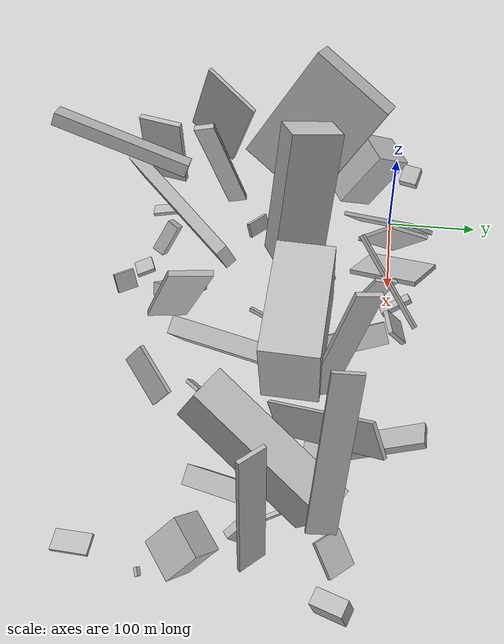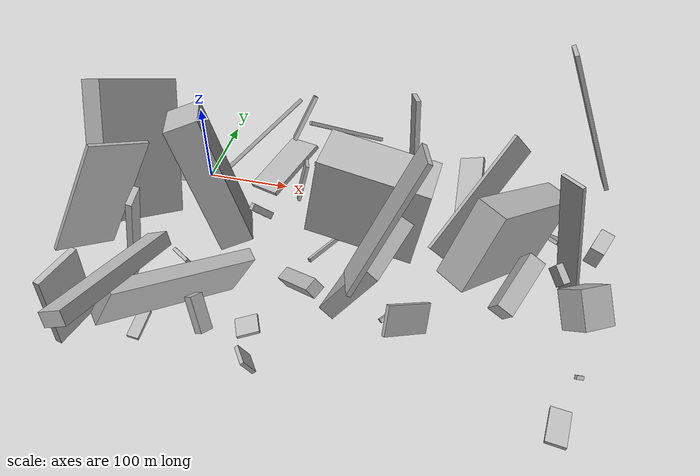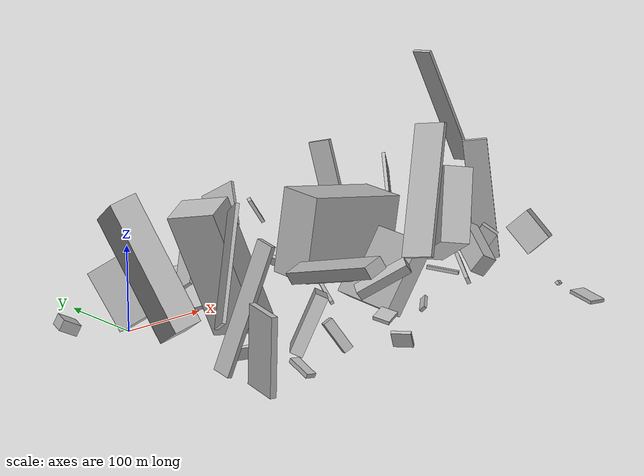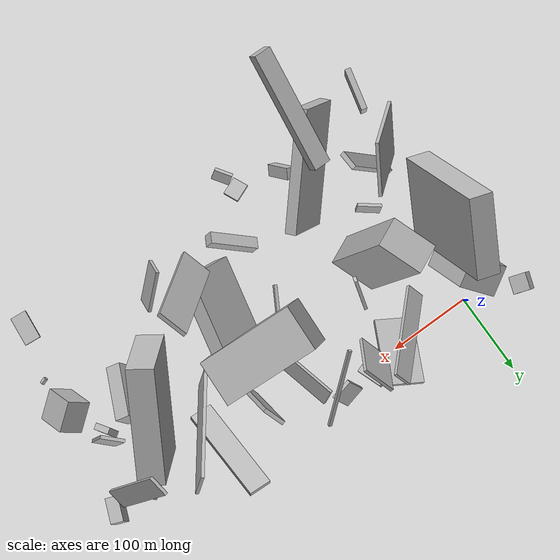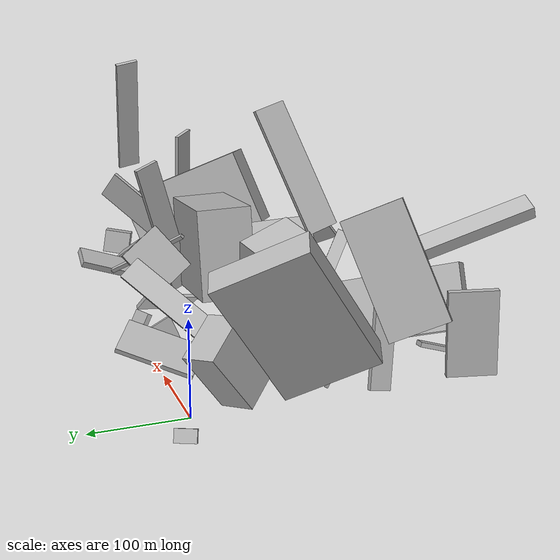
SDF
<sdf version="1.6">
 <world name="default">
  <model name="building_1">
   <static>0</static>
   <pose>428.7278207946596 -42.18034510931085 16.957182287933723 0.2696268442568458 -0.6270759837252157 -2.5399342450366302</pose>
   <link name="link">
    <gravity>0</gravity>
    <pose>0 0 2.0 0 0 0</pose>
    <collision name="collision"><geometry><box><size>35 29 4</size></box></geometry></collision>
    <visual name="visual">
     <cast_shadows>0</cast_shadows>
     <geometry><box><size>35 29 4</size></box></geometry>
     <material>
      <script>
       <uri>model://HANNAS_wall/materials/scripts</uri>
       <uri>model://HANNAS_wall/materials/textures</uri>
       <name>vrc/HANNAS_wall</name>
      </script>
     </material>
    </visual>
   </link>
  </model>
  <model name="building_2">
   <static>0</static>
   <pose>-28.17454216547587 -94.84533791944695 109.63824158741866 1.9519408101106384 -0.4505372925723455 -2.0603386438884987</pose>
   <link name="link">
    <gravity>0</gravity>
    <pose>0 0 15.0 0 0 0</pose>
    <collision name="collision"><geometry><box><size>101 150 30</size></box></geometry></collision>
    <visual name="visual">
     <cast_shadows>0</cast_shadows>
     <geometry><box><size>101 150 30</size></box></geometry>
     <material>
      <script>
       <uri>model://HANNAS_wall/materials/scripts</uri>
       <uri>model://HANNAS_wall/materials/textures</uri>
       <name>vrc/HANNAS_wall</name>
      </script>
     </material>
    </visual>
   </link>
  </model>
  <model name="building_3">
   <static>0</static>
   <pose>356.6416913808307 -103.4254415363435 86.08854179847128 1.8408781530230274 -1.111384099670945 0.7236825017648608</pose>
   <link name="link">
    <gravity>0</gravity>
    <pose>0 0 16.5 0 0 0</pose>
    <collision name="collision"><geometry><box><size>87 150 33</size></box></geometry></collision>
    <visual name="visual">
     <cast_shadows>0</cast_shadows>
     <geometry><box><size>87 150 33</size></box></geometry>
     <material>
      <script>
       <uri>model://HANNAS_wall/materials/scripts</uri>
       <uri>model://HANNAS_wall/materials/textures</uri>
       <name>vrc/HANNAS_wall</name>
      </script>
     </material>
    </visual>
   </link>
  </model>
  <model name="building_7">
   <static>0</static>
   <pose>443.29078052178306 -162.41020155717433 48.78575082048646 0.8316328073190492 0.2480510757554841 0.6548419063276454</pose>
   <link name="link">
    <gravity>0</gravity>
    <pose>0 0 15.5 0 0 0</pose>
    <collision name="collision"><geometry><box><size>38 40 31</size></box></geometry></collision>
    <visual name="visual">
     <cast_shadows>0</cast_shadows>
     <geometry><box><size>38 40 31</size></box></geometry>
     <material>
      <script>
       <uri>model://HANNAS_wall/materials/scripts</uri>
       <uri>model://HANNAS_wall/materials/textures</uri>
       <name>vrc/HANNAS_wall</name>
      </script>
     </material>
    </visual>
   </link>
  </model>
  <model name="building_10">
   <static>0</static>
   <pose>228.71980783097445 -219.0600795961326 89.68858729290486 -0.21594638919581066 0.465933889172764 0.1764617138610535</pose>
   <link name="link">
    <gravity>0</gravity>
    <pose>0 0 75.0 0 0 0</pose>
    <collision name="collision"><geometry><box><size>5 38 150</size></box></geometry></collision>
    <visual name="visual">
     <cast_shadows>0</cast_shadows>
     <geometry><box><size>5 38 150</size></box></geometry>
     <material>
      <script>
       <uri>model://HANNAS_wall/materials/scripts</uri>
       <uri>model://HANNAS_wall/materials/textures</uri>
       <name>vrc/HANNAS_wall</name>
      </script>
     </material>
    </visual>
   </link>
  </model>
  <model name="building_13">
   <static>0</static>
   <pose>336.2608177523333 -57.26380573803487 77.9672676747095 1.3693642088923739 -0.6420917357678897 0.9331751176483453</pose>
   <link name="link">
    <gravity>0</gravity>
    <pose>0 0 2.0 0 0 0</pose>
    <collision name="collision"><geometry><box><size>150 35 4</size></box></geometry></collision>
    <visual name="visual">
     <cast_shadows>0</cast_shadows>
     <geometry><box><size>150 35 4</size></box></geometry>
     <material>
      <script>
       <uri>model://HANNAS_wall/materials/scripts</uri>
       <uri>model://HANNAS_wall/materials/textures</uri>
       <name>vrc/HANNAS_wall</name>
      </script>
     </material>
    </visual>
   </link>
  </model>
  <model name="building_16">
   <static>0</static>
   <pose>193.89481058045058 -105.43311970905435 31.41895714829406 -0.4205426350928042 -0.03033148948708915 1.048182692523181</pose>
   <link name="link">
    <gravity>0</gravity>
    <pose>0 0 2.0 0 0 0</pose>
    <collision name="collision"><geometry><box><size>93 4 4</size></box></geometry></collision>
    <visual name="visual">
     <cast_shadows>0</cast_shadows>
     <geometry><box><size>93 4 4</size></box></geometry>
     <material>
      <script>
       <uri>model://HANNAS_wall/materials/scripts</uri>
       <uri>model://HANNAS_wall/materials/textures</uri>
       <name>vrc/HANNAS_wall</name>
      </script>
     </material>
    </visual>
   </link>
  </model>
  <model name="building_18">
   <static>0</static>
   <pose>32.88048200828119 -107.98514863970502 84.6322911813534 0.669048243016013 -1.2128516110476115 2.8612218517507046</pose>
   <link name="link">
    <gravity>0</gravity>
    <pose>0 0 18.5 0 0 0</pose>
    <collision name="collision"><geometry><box><size>150 58 37</size></box></geometry></collision>
    <visual name="visual">
     <cast_shadows>0</cast_shadows>
     <geometry><box><size>150 58 37</size></box></geometry>
     <material>
      <script>
       <uri>model://HANNAS_wall/materials/scripts</uri>
       <uri>model://HANNAS_wall/materials/textures</uri>
       <name>vrc/HANNAS_wall</name>
      </script>
     </material>
    </visual>
   </link>
  </model>
  <model name="building_21">
   <static>0</static>
   <pose>312.31016568434177 -19.070956634057474 30.517171959442205 1.2552241656883703 -0.36375143930811493 1.625078557167272</pose>
   <link name="link">
    <gravity>0</gravity>
    <pose>0 0 14.0 0 0 0</pose>
    <collision name="collision"><geometry><box><size>120 7 28</size></box></geometry></collision>
    <visual name="visual">
     <cast_shadows>0</cast_shadows>
     <geometry><box><size>120 7 28</size></box></geometry>
     <material>
      <script>
       <uri>model://HANNAS_wall/materials/scripts</uri>
       <uri>model://HANNAS_wall/materials/textures</uri>
       <name>vrc/HANNAS_wall</name>
      </script>
     </material>
    </visual>
   </link>
  </model>
  <model name="building_23">
   <static>0</static>
   <pose>382.7426065292191 -140.7126565185507 36.86874132402577 0.5172526830908211 -0.3474380195366629 1.1447578669161191</pose>
   <link name="link">
    <gravity>0</gravity>
    <pose>0 0 12.5 0 0 0</pose>
    <collision name="collision"><geometry><box><size>66 19 25</size></box></geometry></collision>
    <visual name="visual">
     <cast_shadows>0</cast_shadows>
     <geometry><box><size>66 19 25</size></box></geometry>
     <material>
      <script>
       <uri>model://HANNAS_wall/materials/scripts</uri>
       <uri>model://HANNAS_wall/materials/textures</uri>
       <name>vrc/HANNAS_wall</name>
      </script>
     </material>
    </visual>
   </link>
  </model>
  <model name="building_25">
   <static>0</static>
   <pose>4.389593965171748 -196.6463219581927 78.0228220871806 0.6567361422352153 -1.2488125313625755 -0.5873960676156447</pose>
   <link name="link">
    <gravity>0</gravity>
    <pose>0 0 3.0 0 0 0</pose>
    <collision name="collision"><geometry><box><size>150 22 6</size></box></geometry></collision>
    <visual name="visual">
     <cast_shadows>0</cast_shadows>
     <geometry><box><size>150 22 6</size></box></geometry>
     <material>
      <script>
       <uri>model://HANNAS_wall/materials/scripts</uri>
       <uri>model://HANNAS_wall/materials/textures</uri>
       <name>vrc/HANNAS_wall</name>
      </script>
     </material>
    </visual>
   </link>
  </model>
  <model name="building_28">
   <static>0</static>
   <pose>25.171193193501406 -260.3033794873742 22.70617858074064 -0.30392544793453796 -0.15597460392270407 3.105824835132039</pose>
   <link name="link">
    <gravity>0</gravity>
    <pose>0 0 2.5 0 0 0</pose>
    <collision name="collision"><geometry><box><size>12 31 5</size></box></geometry></collision>
    <visual name="visual">
     <cast_shadows>0</cast_shadows>
     <geometry><box><size>12 31 5</size></box></geometry>
     <material>
      <script>
       <uri>model://HANNAS_wall/materials/scripts</uri>
       <uri>model://HANNAS_wall/materials/textures</uri>
       <name>vrc/HANNAS_wall</name>
      </script>
     </material>
    </visual>
   </link>
  </model>
  <model name="building_29">
   <static>0</static>
   <pose>166.59759432747757 -88.10911189030281 96.64680551353538 1.7373745606689475 0.008003665109042659 1.5205692075635895</pose>
   <link name="link">
    <gravity>0</gravity>
    <pose>0 0 60.0 0 0 0</pose>
    <collision name="collision"><geometry><box><size>58 97 120</size></box></geometry></collision>
    <visual name="visual">
     <cast_shadows>0</cast_shadows>
     <geometry><box><size>58 97 120</size></box></geometry>
     <material>
      <script>
       <uri>model://HANNAS_wall/materials/scripts</uri>
       <uri>model://HANNAS_wall/materials/textures</uri>
       <name>vrc/HANNAS_wall</name>
      </script>
     </material>
    </visual>
   </link>
  </model>
  <model name="building_30">
   <static>0</static>
   <pose>457.94054671979103 -53.84595376861509 118.95663722659444 0.13923218618742 0.3762697699440008 -2.9762716071977593</pose>
   <link name="link">
    <gravity>0</gravity>
    <pose>0 0 75.0 0 0 0</pose>
    <collision name="collision"><geometry><box><size>4 25 150</size></box></geometry></collision>
    <visual name="visual">
     <cast_shadows>0</cast_shadows>
     <geometry><box><size>4 25 150</size></box></geometry>
     <material>
      <script>
       <uri>model://HANNAS_wall/materials/scripts</uri>
       <uri>model://HANNAS_wall/materials/textures</uri>
       <name>vrc/HANNAS_wall</name>
      </script>
     </material>
    </visual>
   </link>
  </model>
  <model name="building_39">
   <static>0</static>
   <pose>62.60809345430033 -238.50681258945428 57.45522619852334 1.1505146672770694 -0.29645369070519156 -2.286266401794108</pose>
   <link name="link">
    <gravity>0</gravity>
    <pose>0 0 7.0 0 0 0</pose>
    <collision name="collision"><geometry><box><size>150 66 14</size></box></geometry></collision>
    <visual name="visual">
     <cast_shadows>0</cast_shadows>
     <geometry><box><size>150 66 14</size></box></geometry>
     <material>
      <script>
       <uri>model://HANNAS_wall/materials/scripts</uri>
       <uri>model://HANNAS_wall/materials/textures</uri>
       <name>vrc/HANNAS_wall</name>
      </script>
     </material>
    </visual>
   </link>
  </model>
  <model name="building_40">
   <static>0</static>
   <pose>42.458412938245424 -44.21529362586462 52.10254592129152 -0.8764587203590163 -0.6336072392792207 -1.2573864721766719</pose>
   <link name="link">
    <gravity>0</gravity>
    <pose>0 0 60.0 0 0 0</pose>
    <collision name="collision"><geometry><box><size>25 4 120</size></box></geometry></collision>
    <visual name="visual">
     <cast_shadows>0</cast_shadows>
     <geometry><box><size>25 4 120</size></box></geometry>
     <material>
      <script>
       <uri>model://HANNAS_wall/materials/scripts</uri>
       <uri>model://HANNAS_wall/materials/textures</uri>
       <name>vrc/HANNAS_wall</name>
      </script>
     </material>
    </visual>
   </link>
  </model>
  <model name="building_43">
   <static>0</static>
   <pose>-45.29101240393278 -213.45261910531525 74.7563470510527 0.44955479510648966 -0.16801294524254867 2.5157912584367494</pose>
   <link name="link">
    <gravity>0</gravity>
    <pose>0 0 62.5 0 0 0</pose>
    <collision name="collision"><geometry><box><size>4 65 125</size></box></geometry></collision>
    <visual name="visual">
     <cast_shadows>0</cast_shadows>
     <geometry><box><size>4 65 125</size></box></geometry>
     <material>
      <script>
       <uri>model://HANNAS_wall/materials/scripts</uri>
       <uri>model://HANNAS_wall/materials/textures</uri>
       <name>vrc/HANNAS_wall</name>
      </script>
     </material>
    </visual>
   </link>
  </model>
  <model name="building_44">
   <static>0</static>
   <pose>93.79763727356249 -81.6163046011543 25.32142411683902 0.8899945130065595 -0.027524245287982935 2.8680903217279052</pose>
   <link name="link">
    <gravity>0</gravity>
    <pose>0 0 4.0 0 0 0</pose>
    <collision name="collision"><geometry><box><size>4 56 8</size></box></geometry></collision>
    <visual name="visual">
     <cast_shadows>0</cast_shadows>
     <geometry><box><size>4 56 8</size></box></geometry>
     <material>
      <script>
       <uri>model://HANNAS_wall/materials/scripts</uri>
       <uri>model://HANNAS_wall/materials/textures</uri>
       <name>vrc/HANNAS_wall</name>
      </script>
     </material>
    </visual>
   </link>
  </model>
  <model name="building_45">
   <static>0</static>
   <pose>-36.60759055950637 -15.645972913454838 48.77078250600714 0.9750750165499324 0.18829878276945694 0.5524284972268402</pose>
   <link name="link">
    <gravity>0</gravity>
    <pose>0 0 25.5 0 0 0</pose>
    <collision name="collision"><geometry><box><size>38 72 51</size></box></geometry></collision>
    <visual name="visual">
     <cast_shadows>0</cast_shadows>
     <geometry><box><size>38 72 51</size></box></geometry>
     <material>
      <script>
       <uri>model://HANNAS_wall/materials/scripts</uri>
       <uri>model://HANNAS_wall/materials/textures</uri>
       <name>vrc/HANNAS_wall</name>
      </script>
     </material>
    </visual>
   </link>
  </model>
  <model name="building_46">
   <static>0</static>
   <pose>439.36246692231015 -259.06855711220277 13.110036924226572 2.4662749637548003 -1.4580544607966326 -0.9946570482629284</pose>
   <link name="link">
    <gravity>0</gravity>
    <pose>0 0 18.0 0 0 0</pose>
    <collision name="collision"><geometry><box><size>4 20 36</size></box></geometry></collision>
    <visual name="visual">
     <cast_shadows>0</cast_shadows>
     <geometry><box><size>4 20 36</size></box></geometry>
     <material>
      <script>
       <uri>model://HANNAS_wall/materials/scripts</uri>
       <uri>model://HANNAS_wall/materials/textures</uri>
       <name>vrc/HANNAS_wall</name>
      </script>
     </material>
    </visual>
   </link>
  </model>
  <model name="building_47">
   <static>0</static>
   <pose>263.7995213693678 -190.17505972717737 21.81516428093468 -2.3060808246763393 0.29613930957777457 -2.3826833346823335</pose>
   <link name="link">
    <gravity>0</gravity>
    <pose>0 0 2.0 0 0 0</pose>
    <collision name="collision"><geometry><box><size>21 8 4</size></box></geometry></collision>
    <visual name="visual">
     <cast_shadows>0</cast_shadows>
     <geometry><box><size>21 8 4</size></box></geometry>
     <material>
      <script>
       <uri>model://HANNAS_wall/materials/scripts</uri>
       <uri>model://HANNAS_wall/materials/textures</uri>
       <name>vrc/HANNAS_wall</name>
      </script>
     </material>
    </visual>
   </link>
  </model>
  <model name="building_48">
   <static>0</static>
   <pose>245.5349558907964 -158.25828220529715 53.42366633585462 1.0129079876725369 -0.08658230980326903 -1.786729906764657</pose>
   <link name="link">
    <gravity>0</gravity>
    <pose>0 0 9.0 0 0 0</pose>
    <collision name="collision"><geometry><box><size>110 85 18</size></box></geometry></collision>
    <visual name="visual">
     <cast_shadows>0</cast_shadows>
     <geometry><box><size>110 85 18</size></box></geometry>
     <material>
      <script>
       <uri>model://HANNAS_wall/materials/scripts</uri>
       <uri>model://HANNAS_wall/materials/textures</uri>
       <name>vrc/HANNAS_wall</name>
      </script>
     </material>
    </visual>
   </link>
  </model>
  <model name="building_51">
   <static>0</static>
   <pose>140.41809066426353 9.634206397802721 16.767006799696865 -0.4362126192983932 0.05062594441194148 -2.811261060848711</pose>
   <link name="link">
    <gravity>0</gravity>
    <pose>0 0 3.5 0 0 0</pose>
    <collision name="collision"><geometry><box><size>9 34 7</size></box></geometry></collision>
    <visual name="visual">
     <cast_shadows>0</cast_shadows>
     <geometry><box><size>9 34 7</size></box></geometry>
     <material>
      <script>
       <uri>model://HANNAS_wall/materials/scripts</uri>
       <uri>model://HANNAS_wall/materials/textures</uri>
       <name>vrc/HANNAS_wall</name>
      </script>
     </material>
    </visual>
   </link>
  </model>
  <model name="building_52">
   <static>0</static>
   <pose>456.19945445854177 -212.69543005472303 4.9589546232820165 0.42845480037777595 -0.6883425021912473 1.581012202550455</pose>
   <link name="link">
    <gravity>0</gravity>
    <pose>0 0 2.0 0 0 0</pose>
    <collision name="collision"><geometry><box><size>4 8 4</size></box></geometry></collision>
    <visual name="visual">
     <cast_shadows>0</cast_shadows>
     <geometry><box><size>4 8 4</size></box></geometry>
     <material>
      <script>
       <uri>model://HANNAS_wall/materials/scripts</uri>
       <uri>model://HANNAS_wall/materials/textures</uri>
       <name>vrc/HANNAS_wall</name>
      </script>
     </material>
    </visual>
   </link>
  </model>
  <model name="building_54">
   <static>0</static>
   <pose>149.82770195874303 -282.2264419177699 24.523168768038712 -0.06628542757418707 -0.49677980457982607 0.625199077303753</pose>
   <link name="link">
    <gravity>0</gravity>
    <pose>0 0 10.5 0 0 0</pose>
    <collision name="collision"><geometry><box><size>4 22 21</size></box></geometry></collision>
    <visual name="visual">
     <cast_shadows>0</cast_shadows>
     <geometry><box><size>4 22 21</size></box></geometry>
     <material>
      <script>
       <uri>model://HANNAS_wall/materials/scripts</uri>
       <uri>model://HANNAS_wall/materials/textures</uri>
       <name>vrc/HANNAS_wall</name>
      </script>
     </material>
    </visual>
   </link>
  </model>
  <model name="building_55">
   <static>0</static>
   <pose>92.77255858776658 -256.909061935312 27.37927024671644 -0.3145146976905711 -0.5641164056855686 -0.3573004512198289</pose>
   <link name="link">
    <gravity>0</gravity>
    <pose>0 0 19.0 0 0 0</pose>
    <collision name="collision"><geometry><box><size>11 14 38</size></box></geometry></collision>
    <visual name="visual">
     <cast_shadows>0</cast_shadows>
     <geometry><box><size>11 14 38</size></box></geometry>
     <material>
      <script>
       <uri>model://HANNAS_wall/materials/scripts</uri>
       <uri>model://HANNAS_wall/materials/textures</uri>
       <name>vrc/HANNAS_wall</name>
      </script>
     </material>
    </visual>
   </link>
  </model>
  <model name="building_56">
   <static>0</static>
   <pose>188.19525687219092 10.59624731970571 23.26765266393888 1.4148939091047186 0.559203219790466 -1.415305878373989</pose>
   <link name="link">
    <gravity>0</gravity>
    <pose>0 0 13.5 0 0 0</pose>
    <collision name="collision"><geometry><box><size>5 33 27</size></box></geometry></collision>
    <visual name="visual">
     <cast_shadows>0</cast_shadows>
     <geometry><box><size>5 33 27</size></box></geometry>
     <material>
      <script>
       <uri>model://HANNAS_wall/materials/scripts</uri>
       <uri>model://HANNAS_wall/materials/textures</uri>
       <name>vrc/HANNAS_wall</name>
      </script>
     </material>
    </visual>
   </link>
  </model>
  <model name="building_64">
   <static>0</static>
   <pose>305.3929777025232 -213.68937100538724 54.94362174514431 -0.7030645321901017 -0.9566538743959774 1.5264103343599316</pose>
   <link name="link">
    <gravity>0</gravity>
    <pose>0 0 26.0 0 0 0</pose>
    <collision name="collision"><geometry><box><size>30 4 52</size></box></geometry></collision>
    <visual name="visual">
     <cast_shadows>0</cast_shadows>
     <geometry><box><size>30 4 52</size></box></geometry>
     <material>
      <script>
       <uri>model://HANNAS_wall/materials/scripts</uri>
       <uri>model://HANNAS_wall/materials/textures</uri>
       <name>vrc/HANNAS_wall</name>
      </script>
     </material>
    </visual>
   </link>
  </model>
  <model name="building_65">
   <static>0</static>
   <pose>120.99163675403472 -19.09878010471369 93.50945918211875 0.6206539190209832 -0.43606268779534824 -3.1261576015923924</pose>
   <link name="link">
    <gravity>0</gravity>
    <pose>0 0 26.5 0 0 0</pose>
    <collision name="collision"><geometry><box><size>4 46 53</size></box></geometry></collision>
    <visual name="visual">
     <cast_shadows>0</cast_shadows>
     <geometry><box><size>4 46 53</size></box></geometry>
     <material>
      <script>
       <uri>model://HANNAS_wall/materials/scripts</uri>
       <uri>model://HANNAS_wall/materials/textures</uri>
       <name>vrc/HANNAS_wall</name>
      </script>
     </material>
    </visual>
   </link>
  </model>
  <model name="building_66">
   <static>0</static>
   <pose>38.606285495298216 -162.7121621429749 12.41726898453112 -1.91974246506526 1.1384180895213016 0.5893877760352274</pose>
   <link name="link">
    <gravity>0</gravity>
    <pose>0 0 14.5 0 0 0</pose>
    <collision name="collision"><geometry><box><size>17 4 29</size></box></geometry></collision>
    <visual name="visual">
     <cast_shadows>0</cast_shadows>
     <geometry><box><size>17 4 29</size></box></geometry>
     <material>
      <script>
       <uri>model://HANNAS_wall/materials/scripts</uri>
       <uri>model://HANNAS_wall/materials/textures</uri>
       <name>vrc/HANNAS_wall</name>
      </script>
     </material>
    </visual>
   </link>
  </model>
  <model name="building_68">
   <static>0</static>
   <pose>202.88718263203256 -32.80971661368076 35.779496507999994 0.8342022044286683 -0.1917329201224511 1.8118106915737138</pose>
   <link name="link">
    <gravity>0</gravity>
    <pose>0 0 2.0 0 0 0</pose>
    <collision name="collision"><geometry><box><size>64 23 4</size></box></geometry></collision>
    <visual name="visual">
     <cast_shadows>0</cast_shadows>
     <geometry><box><size>64 23 4</size></box></geometry>
     <material>
      <script>
       <uri>model://HANNAS_wall/materials/scripts</uri>
       <uri>model://HANNAS_wall/materials/textures</uri>
       <name>vrc/HANNAS_wall</name>
      </script>
     </material>
    </visual>
   </link>
  </model>
  <model name="building_69">
   <static>0</static>
   <pose>429.03393318344104 -114.06699200355952 88.69084877777664 1.4645781935610576 0.11491312557492608 2.34365310736227</pose>
   <link name="link">
    <gravity>0</gravity>
    <pose>0 0 2.0 0 0 0</pose>
    <collision name="collision"><geometry><box><size>28 150 4</size></box></geometry></collision>
    <visual name="visual">
     <cast_shadows>0</cast_shadows>
     <geometry><box><size>28 150 4</size></box></geometry>
     <material>
      <script>
       <uri>model://HANNAS_wall/materials/scripts</uri>
       <uri>model://HANNAS_wall/materials/textures</uri>
       <name>vrc/HANNAS_wall</name>
      </script>
     </material>
    </visual>
   </link>
  </model>
  <model name="building_70">
   <static>0</static>
   <pose>468.6286484511866 -37.233243298411786 16.987373642923586 1.7438752786369887 -0.14150032294468648 1.1813993020270848</pose>
   <link name="link">
    <gravity>0</gravity>
    <pose>0 0 8.0 0 0 0</pose>
    <collision name="collision"><geometry><box><size>31 27 16</size></box></geometry></collision>
    <visual name="visual">
     <cast_shadows>0</cast_shadows>
     <geometry><box><size>31 27 16</size></box></geometry>
     <material>
      <script>
       <uri>model://HANNAS_wall/materials/scripts</uri>
       <uri>model://HANNAS_wall/materials/textures</uri>
       <name>vrc/HANNAS_wall</name>
      </script>
     </material>
    </visual>
   </link>
  </model>
  <model name="building_71">
   <static>0</static>
   <pose>426.11145612182384 -118.9958792404859 40.92647160478757 -0.5742934114926567 0.084442996754387 -2.5654319784057793</pose>
   <link name="link">
    <gravity>0</gravity>
    <pose>0 0 9.5 0 0 0</pose>
    <collision name="collision"><geometry><box><size>8 21 19</size></box></geometry></collision>
    <visual name="visual">
     <cast_shadows>0</cast_shadows>
     <geometry><box><size>8 21 19</size></box></geometry>
     <material>
      <script>
       <uri>model://HANNAS_wall/materials/scripts</uri>
       <uri>model://HANNAS_wall/materials/textures</uri>
       <name>vrc/HANNAS_wall</name>
      </script>
     </material>
    </visual>
   </link>
  </model>
  <model name="building_73">
   <static>0</static>
   <pose>264.7373766162509 -45.287305362496326 101.88013586808768 1.550263219546519 -0.2752465230010884 -1.2473084306402185</pose>
   <link name="link">
    <gravity>0</gravity>
    <pose>0 0 2.5 0 0 0</pose>
    <collision name="collision"><geometry><box><size>27 150 5</size></box></geometry></collision>
    <visual name="visual">
     <cast_shadows>0</cast_shadows>
     <geometry><box><size>27 150 5</size></box></geometry>
     <material>
      <script>
       <uri>model://HANNAS_wall/materials/scripts</uri>
       <uri>model://HANNAS_wall/materials/textures</uri>
       <name>vrc/HANNAS_wall</name>
      </script>
     </material>
    </visual>
   </link>
  </model>
  <model name="building_74">
   <static>0</static>
   <pose>-31.948116657658804 -247.6508054258749 62.668831496888636 1.443172197844161 -1.5428682398338054 -0.1045644664650686</pose>
   <link name="link">
    <gravity>0</gravity>
    <pose>0 0 25.0 0 0 0</pose>
    <collision name="collision"><geometry><box><size>87 7 50</size></box></geometry></collision>
    <visual name="visual">
     <cast_shadows>0</cast_shadows>
     <geometry><box><size>87 7 50</size></box></geometry>
     <material>
      <script>
       <uri>model://HANNAS_wall/materials/scripts</uri>
       <uri>model://HANNAS_wall/materials/textures</uri>
       <name>vrc/HANNAS_wall</name>
      </script>
     </material>
    </visual>
   </link>
  </model>
  <model name="building_75">
   <static>0</static>
   <pose>127.17811148076538 -11.548386995734994 25.250086195604638 -0.8449922066093722 -1.15849686059064 1.1194072795831327</pose>
   <link name="link">
    <gravity>0</gravity>
    <pose>0 0 2.0 0 0 0</pose>
    <collision name="collision"><geometry><box><size>45 26 4</size></box></geometry></collision>
    <visual name="visual">
     <cast_shadows>0</cast_shadows>
     <geometry><box><size>45 26 4</size></box></geometry>
     <material>
      <script>
       <uri>model://HANNAS_wall/materials/scripts</uri>
       <uri>model://HANNAS_wall/materials/textures</uri>
       <name>vrc/HANNAS_wall</name>
      </script>
     </material>
    </visual>
   </link>
  </model>
  <model name="building_76">
   <static>0</static>
   <pose>390.3733292677882 -92.71589838326014 7.18620521700089 2.02678746041837 -1.4990830931628176 -1.5558753259883094</pose>
   <link name="link">
    <gravity>0</gravity>
    <pose>0 0 2.0 0 0 0</pose>
    <collision name="collision"><geometry><box><size>4 39 4</size></box></geometry></collision>
    <visual name="visual">
     <cast_shadows>0</cast_shadows>
     <geometry><box><size>4 39 4</size></box></geometry>
     <material>
      <script>
       <uri>model://HANNAS_wall/materials/scripts</uri>
       <uri>model://HANNAS_wall/materials/textures</uri>
       <name>vrc/HANNAS_wall</name>
      </script>
     </material>
    </visual>
   </link>
  </model>
  <model name="building_80">
   <static>0</static>
   <pose>-56.66940943364594 20.07618584228 12.550186477074508 -1.110158125110249 -0.045919276340135394 1.2427051710273571</pose>
   <link name="link">
    <gravity>0</gravity>
    <pose>0 0 11.0 0 0 0</pose>
    <collision name="collision"><geometry><box><size>21 13 22</size></box></geometry></collision>
    <visual name="visual">
     <cast_shadows>0</cast_shadows>
     <geometry><box><size>21 13 22</size></box></geometry>
     <material>
      <script>
       <uri>model://HANNAS_wall/materials/scripts</uri>
       <uri>model://HANNAS_wall/materials/textures</uri>
       <name>vrc/HANNAS_wall</name>
      </script>
     </material>
    </visual>
   </link>
  </model>
  <model name="building_82">
   <static>0</static>
   <pose>97.33700548630927 2.864450275321155 32.79032265689612 2.8562442108074335 -0.32130054717110124 1.1093989909724775</pose>
   <link name="link">
    <gravity>0</gravity>
    <pose>0 0 2.5 0 0 0</pose>
    <collision name="collision"><geometry><box><size>81 47 5</size></box></geometry></collision>
    <visual name="visual">
     <cast_shadows>0</cast_shadows>
     <geometry><box><size>81 47 5</size></box></geometry>
     <material>
      <script>
       <uri>model://HANNAS_wall/materials/scripts</uri>
       <uri>model://HANNAS_wall/materials/textures</uri>
       <name>vrc/HANNAS_wall</name>
      </script>
     </material>
    </visual>
   </link>
  </model>
  <model name="building_83">
   <static>0</static>
   <pose>161.618844908141 -196.6305632063793 59.29238190432285 -0.6187777022869869 -0.8977966135014044 -3.1373926359010724</pose>
   <link name="link">
    <gravity>0</gravity>
    <pose>0 0 31.0 0 0 0</pose>
    <collision name="collision"><geometry><box><size>13 14 62</size></box></geometry></collision>
    <visual name="visual">
     <cast_shadows>0</cast_shadows>
     <geometry><box><size>13 14 62</size></box></geometry>
     <material>
      <script>
       <uri>model://HANNAS_wall/materials/scripts</uri>
       <uri>model://HANNAS_wall/materials/textures</uri>
       <name>vrc/HANNAS_wall</name>
      </script>
     </material>
    </visual>
   </link>
  </model>
  <model name="building_84">
   <static>0</static>
   <pose>138.02210618490187 -253.03471140407513 56.46649355229155 2.330600856986406 1.2943980247053866 1.1584663463576592</pose>
   <link name="link">
    <gravity>0</gravity>
    <pose>0 0 9.5 0 0 0</pose>
    <collision name="collision"><geometry><box><size>4 22 19</size></box></geometry></collision>
    <visual name="visual">
     <cast_shadows>0</cast_shadows>
     <geometry><box><size>4 22 19</size></box></geometry>
     <material>
      <script>
       <uri>model://HANNAS_wall/materials/scripts</uri>
       <uri>model://HANNAS_wall/materials/textures</uri>
       <name>vrc/HANNAS_wall</name>
      </script>
     </material>
    </visual>
   </link>
  </model>
  <model name="building_85">
   <static>0</static>
   <pose>48.41790960979951 -225.4331767046501 114.418766699023 -0.8529503700101266 -1.0830801405093144 2.3585185051944677</pose>
   <link name="link">
    <gravity>0</gravity>
    <pose>0 0 75.0 0 0 0</pose>
    <collision name="collision"><geometry><box><size>14 22 150</size></box></geometry></collision>
    <visual name="visual">
     <cast_shadows>0</cast_shadows>
     <geometry><box><size>14 22 150</size></box></geometry>
     <material>
      <script>
       <uri>model://HANNAS_wall/materials/scripts</uri>
       <uri>model://HANNAS_wall/materials/textures</uri>
       <name>vrc/HANNAS_wall</name>
      </script>
     </material>
    </visual>
   </link>
  </model>
  <model name="building_87">
   <static>0</static>
   <pose>214.09149343676623 23.19556200028746 76.18192158337618 0.9731576441727029 -0.43059861835274155 -0.5927370612711482</pose>
   <link name="link">
    <gravity>0</gravity>
    <pose>0 0 52.5 0 0 0</pose>
    <collision name="collision"><geometry><box><size>4 4 105</size></box></geometry></collision>
    <visual name="visual">
     <cast_shadows>0</cast_shadows>
     <geometry><box><size>4 4 105</size></box></geometry>
     <material>
      <script>
       <uri>model://HANNAS_wall/materials/scripts</uri>
       <uri>model://HANNAS_wall/materials/textures</uri>
       <name>vrc/HANNAS_wall</name>
      </script>
     </material>
    </visual>
   </link>
  </model>
 </world>
</sdf>
